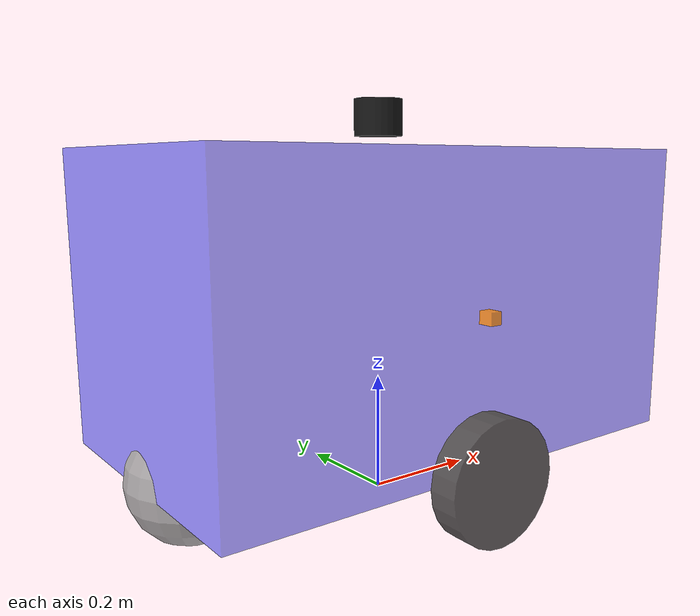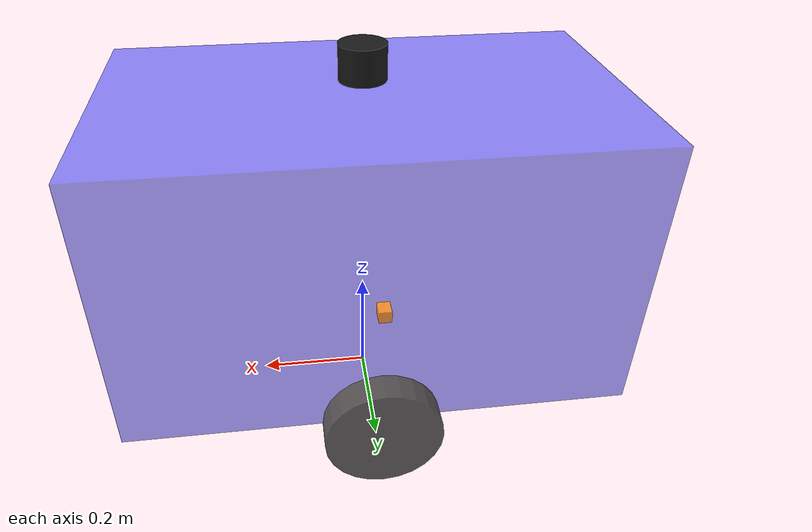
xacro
<?xml version="1.0"?>
<robot name="mybot" xmlns:xacro="http://www.ros.org/wiki/xacro">

  <!-- 1) 引入底盘与传感器模块 -->
  <xacro:include filename="$(find mybot_description)/urdf/mybot/base.urdf.xacro"/>
  <xacro:include filename="$(find mybot_description)/urdf/mybot/sensor/laser.urdf.xacro"/>
  <xacro:include filename="$(find mybot_description)/urdf/mybot/sensor/ultrasonic.urdf.xacro"/>

  <!-- 2) 生成底盘（按你的实机尺寸） -->
  <xacro:mybot_base
    body_length="0.868"
    body_width="0.512"
    body_height="0.490"
    wheel_radius="0.100"
    wheel_thickness="0.050"
    caster_radius="0.1"
    caster_height="0.030"
  />

  <!-- 3) 挂载激光雷达：车身上方正中间
       base_link 原点在车体中心，顶面 z=+0.245，再加 0.05 安装高度 => 0.295
  -->
  <xacro:mybot_laser
    parent="base_link"
    xyz="0 0 0.295"
    rpy="0 0 0"
  />

  <!-- 4) 三个超声（前/左/右），安装在车体中部高度附近（z≈0） -->
  <xacro:mybot_ultrasonic
    name="ultrasonic_front"
    parent="base_link"
    xyz="0.444 0 0"
    rpy="0 0 0"
  />

  <xacro:mybot_ultrasonic
    name="ultrasonic_left"
    parent="base_link"
    xyz="0 0.266 0"
    rpy="0 0 1.57079632679"
  />

  <xacro:mybot_ultrasonic
    name="ultrasonic_right"
    parent="base_link"
    xyz="0 -0.266 0"
    rpy="0 0 -1.57079632679"
  />

</robot>

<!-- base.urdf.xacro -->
<robot xmlns:xacro="http://www.ros.org/wiki/xacro">

  <!-- 惯性工具宏（你已有 common_inertia.xacro 就保留；如果没有，先注释这行也能跑 TF） -->
  <xacro:include filename="$(find mybot_description)/urdf/mybot/common_inertia.xacro" />

  <!--
    mybot_base:
    - base_footprint：地面投影（z=0）
    - base_link：车体坐标系（放在车体几何中心附近）
    - wheels/casters：仅用于TF与可视化，后续上 ros2_control 再完善关节类型与传动
  -->
  <xacro:macro name="mybot_base" params="
      body_length:=0.868
      body_width:=0.512
      body_height:=0.490
      wheel_radius:=0.100
      wheel_thickness:=0.050
      caster_radius:=0.030
      caster_height:=0.030
    ">

    <!-- 1) base_footprint：地面坐标系 -->
    <link name="base_footprint"/>

    <!-- 2) base_link：车体坐标系（将车体整体抬到离地 wheel_radius + body_height/2） -->
    <joint name="base_footprint_to_base_link" type="fixed">
      <parent link="base_footprint"/>
      <child link="base_link"/>
      <origin xyz="0 0 ${wheel_radius + body_height/2.0}" rpy="0 0 0"/>
    </joint>

    <!-- 3) 车体长方体（视觉 + 碰撞 + 惯性） -->
    <link name="base_link">
      <visual>
        <origin xyz="0 0 0" rpy="0 0 0"/>
        <geometry>
          <box size="${body_length} ${body_width} ${body_height}"/>
        </geometry>
        <material name="blue">
          <color rgba="0.1 0.1 1.0 0.5"/>
        </material>
      </visual>

      <collision>
        <origin xyz="0 0 0" rpy="0 0 0"/>
        <geometry>
          <box size="${body_length} ${body_width} ${body_height}"/>
        </geometry>
      </collision>

      <!-- 惯性：先用一个简单 box 惯性占位（后续可按真实质量/分布细化） -->
      <xacro:box_inertia m="20.0" x="${body_length}" y="${body_width}" z="${body_height}"/>
    </link>

    <!-- ===================== 主动轮（左右各一个，车身两侧中间） ===================== -->
    <!-- 左轮 -->
    <link name="left_wheel_link">
      <visual>
        <!-- 轮子中心高度≈轮半径；轮子在 base_link 坐标系下：z = -body_height/2（到底盘底面）+ wheel_radius -->
        <origin xyz="0 0 0" rpy="1.57079632679 0 0"/>
        <geometry>
          <cylinder radius="${wheel_radius}" length="${wheel_thickness}"/>
        </geometry>
        <material name="dark_grey">
          <color rgba="0.2 0.2 0.2 0.8"/>
        </material>
      </visual>
      <collision>
        <origin xyz="0 0 0" rpy="1.57079632679 0 0"/>
        <geometry>
          <cylinder radius="${wheel_radius}" length="${wheel_thickness}"/>
        </geometry>
      </collision>
      <xacro:cylinder_inertia m="2.0" r="${wheel_radius}" h="${wheel_thickness}"/>
    </link>

    <joint name="left_wheel_joint" type="fixed">
      <parent link="base_link"/>
      <child link="left_wheel_link"/>
      <origin xyz="0 ${body_width/2.0 + wheel_thickness/2.0} ${-body_height/2.0}" rpy="0 0 0"/>
    </joint>

    <!-- 右轮 -->
    <link name="right_wheel_link">
      <visual>
        <origin xyz="0 0 0" rpy="1.57079632679 0 0"/>
        <geometry>
          <cylinder radius="${wheel_radius}" length="${wheel_thickness}"/>
        </geometry>
        <material name="dark_grey">
          <color rgba="0.2 0.2 0.2 0.8"/>
        </material>
      </visual>
      <collision>
        <origin xyz="0 0 0" rpy="1.57079632679 0 0"/>
        <geometry>
          <cylinder radius="${wheel_radius}" length="${wheel_thickness}"/>
        </geometry>
      </collision>
      <xacro:cylinder_inertia m="2.0" r="${wheel_radius}" h="${wheel_thickness}"/>
    </link>

    <joint name="right_wheel_joint" type="fixed">
      <parent link="base_link"/>
      <child link="right_wheel_link"/>
      <origin xyz="0 ${-body_width/2.0 - wheel_thickness/2.0} ${-body_height/2.0}" rpy="0 0 0"/>
    </joint>

    <!-- ===================== 万向轮（前后各一个，占位用） ===================== -->
    <!-- 前万向轮 -->
    <link name="caster_front_link">
      <visual>
        <origin xyz="0 0 0" rpy="0 0 0"/>
        <geometry>
          <sphere radius="${caster_radius}"/>
        </geometry>
        <material name="grey">
          <color rgba="0.6 0.6 0.6 0.8"/>
        </material>
      </visual>
      <collision>
        <origin xyz="0 0 0" rpy="0 0 0"/>
        <geometry>
          <sphere radius="${caster_radius}"/>
        </geometry>
      </collision>
      <xacro:sphere_inertia m="0.5" r="${caster_radius}"/>
    </link>

    <joint name="caster_front_joint" type="fixed">
      <parent link="base_link"/>
      <child link="caster_front_link"/>
      <origin xyz="${body_length/2.0 - 0.08} 0 ${-body_height/2.0 - wheel_radius + caster_radius}" rpy="0 0 0"/>
    </joint>

    <!-- 后万向轮 -->
    <link name="caster_rear_link">
      <visual>
        <origin xyz="0 0 0" rpy="0 0 0"/>
        <geometry>
          <sphere radius="${caster_radius}"/>
        </geometry>
        <material name="grey">
          <color rgba="0.6 0.6 0.6 0.8"/>
        </material>
      </visual>
      <collision>
        <origin xyz="0 0 0" rpy="0 0 0"/>
        <geometry>
          <sphere radius="${caster_radius}"/>
        </geometry>
      </collision>
      <xacro:sphere_inertia m="0.5" r="${caster_radius}"/>
    </link>

    <joint name="caster_rear_joint" type="fixed">
      <parent link="base_link"/>
      <child link="caster_rear_link"/>
      <origin xyz="${-body_length/2.0 + 0.08} 0 ${-body_height/2.0 - wheel_radius + caster_radius}" rpy="0 0 0"/>
    </joint>

  </xacro:macro>

</robot>

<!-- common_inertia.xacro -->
<robot xmlns:xacro="http://www.ros.org/wiki/xacro">

  <!-- Box inertia: x,y,z 为长宽高 -->
  <xacro:macro name="box_inertia" params="m x y z">
    <inertial>
      <origin xyz="0 0 0" rpy="0 0 0"/>
      <mass value="${m}"/>
      <inertia
        ixx="${m*(y*y + z*z)/12.0}" ixy="0.0" ixz="0.0"
        iyy="${m*(x*x + z*z)/12.0}" iyz="0.0"
        izz="${m*(x*x + y*y)/12.0}"/>
    </inertial>
  </xacro:macro>

  <!-- Cylinder inertia: r 半径，h 高度；默认圆柱轴沿 z -->
  <xacro:macro name="cylinder_inertia" params="m r h">
    <inertial>
      <origin xyz="0 0 0" rpy="0 0 0"/>
      <mass value="${m}"/>
      <inertia
        ixx="${m*(3*r*r + h*h)/12.0}" ixy="0.0" ixz="0.0"
        iyy="${m*(3*r*r + h*h)/12.0}" iyz="0.0"
        izz="${m*(r*r)/2.0}"/>
    </inertial>
  </xacro:macro>

  <!-- Sphere inertia -->
  <xacro:macro name="sphere_inertia" params="m r">
    <inertial>
      <origin xyz="0 0 0" rpy="0 0 0"/>
      <mass value="${m}"/>
      <inertia
        ixx="${2*m*r*r/5.0}" ixy="0.0" ixz="0.0"
        iyy="${2*m*r*r/5.0}" iyz="0.0"
        izz="${2*m*r*r/5.0}"/>
    </inertial>
  </xacro:macro>

</robot>

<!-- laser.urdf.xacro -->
<robot xmlns:xacro="http://www.ros.org/wiki/xacro">

  <!--
    mybot_laser:
    - 默认 child link 名为 "laser"（建议与 /scan.frame_id 一致）
    - parent 由入口文件传入，通常是 base_link
    - xyz/rpy 由入口传入，便于后续实测调整
  -->
  <xacro:macro name="mybot_laser" params="parent xyz rpy">

    <link name="laser">
      <visual>
        <origin xyz="0 0 0" rpy="0 0 0"/>
        <geometry>
          <!-- 雷达外形占位：小圆柱 -->
          <cylinder radius="0.04" length="0.06"/>
        </geometry>
        <material name="black">
          <color rgba="0.1 0.1 0.1 0.9"/>
        </material>
      </visual>

      <collision>
        <origin xyz="0 0 0" rpy="0 0 0"/>
        <geometry>
          <cylinder radius="0.04" length="0.06"/>
        </geometry>
      </collision>

      <!-- 惯性占位 -->
      <xacro:cylinder_inertia m="0.3" r="0.04" h="0.06"/>
    </link>

    <joint name="laser_joint" type="fixed">
      <parent link="${parent}"/>
      <child link="laser"/>
      <origin xyz="${xyz}" rpy="${rpy}"/>
    </joint>

  </xacro:macro>

</robot>

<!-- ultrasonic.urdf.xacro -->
<robot xmlns:xacro="http://www.ros.org/wiki/xacro">

  <!--
    mybot_ultrasonic:
    - 创建一个超声 frame（link），并固定到 parent
    - 仅用于 TF / 可视化；不影响你当前避障节点订阅 Range 话题
  -->
  <xacro:macro name="mybot_ultrasonic" params="name parent xyz rpy">

    <link name="${name}">
      <visual>
        <origin xyz="0 0 0" rpy="0 0 0"/>
        <geometry>
          <!-- 占位：小盒子 -->
          <box size="0.03 0.02 0.02"/>
        </geometry>
        <material name="orange">
          <color rgba="1.0 0.5 0.0 0.8"/>
        </material>
      </visual>

      <collision>
        <origin xyz="0 0 0" rpy="0 0 0"/>
        <geometry>
          <box size="0.03 0.02 0.02"/>
        </geometry>
      </collision>

      <inertial>
        <origin xyz="0 0 0" rpy="0 0 0"/>
        <mass value="0.05"/>
        <inertia ixx="1e-5" ixy="0" ixz="0" iyy="1e-5" iyz="0" izz="1e-5"/>
      </inertial>
    </link>

    <joint name="${name}_joint" type="fixed">
      <parent link="${parent}"/>
      <child link="${name}"/>
      <origin xyz="${xyz}" rpy="${rpy}"/>
    </joint>

  </xacro:macro>

</robot>
